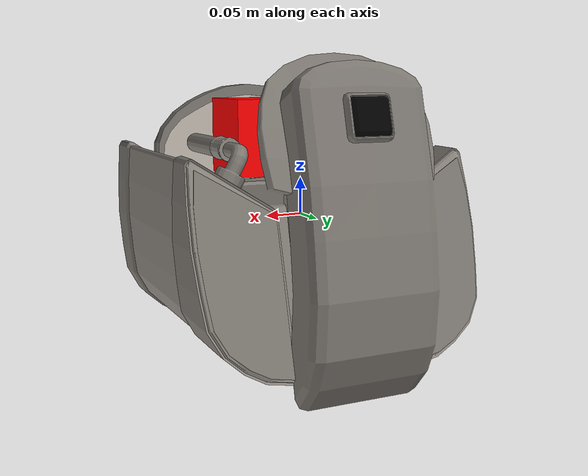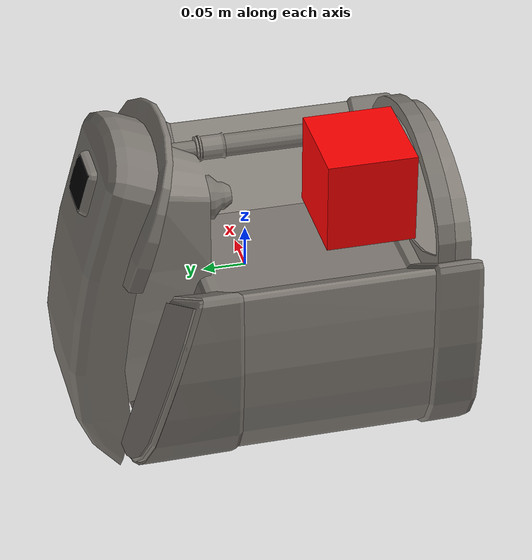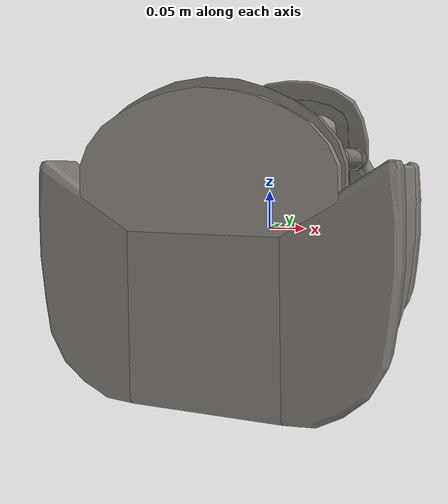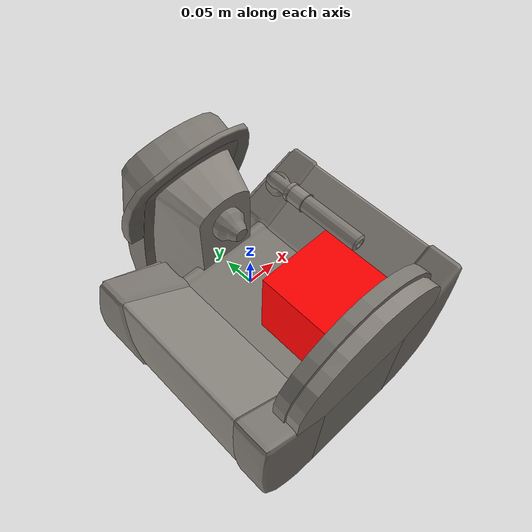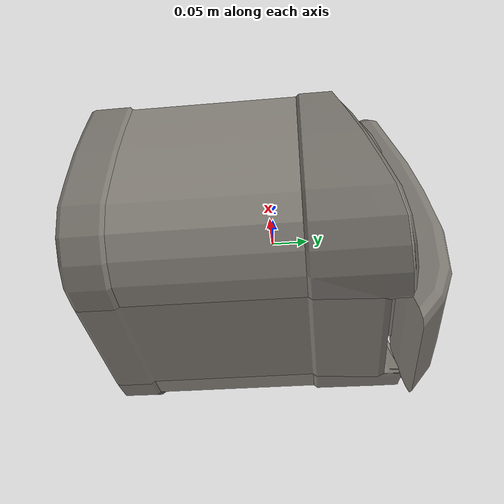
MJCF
<mujoco model="coffee_machine_14">
  <compiler autolimits="true" boundmass="0.01" angle="radian"/>
  <default>
    <default class="/">
      <default class="__VISUAL_MJT__">
        <geom contype="0" conaffinity="0" group="0"/>
      </default>
      <default class="__STRUCTURAL_MJT__">
        <geom contype="8" conaffinity="15" group="4" friction="0.90000000000000002 0.90000000000000002 0.001" solref="0.025000000000000001 1" solimp="0.998 0.998 0.001"/>
      </default>
      <default class="__DYNAMIC_MJT__">
        <geom contype="1" conaffinity="15" group="4" friction="0.90000000000000002 0.90000000000000002 0.001" solref="0.025000000000000001 1" solimp="0.998 0.998 0.001"/>
      </default>
    </default>
  </default>
  <asset>
    <material name="material_coffee_machine_backup_mat" class="/" specular="0.5" shininess="0.5" rgba="0.5 0.5 0.5 1"/>
    <material name="material_Coffee_Machine_Readout_Mat_Off" class="/" specular="0.5" shininess="0.5" rgba="0 0 0 1"/>
    <texture name="Coffee_Machine_Decal_Mat" type="2d" file="Coffee_Machine_Decal_AlbedoTransparency.png"/>
    <material name="material_Coffee_Machine_Decal_Mat" class="/" texture="Coffee_Machine_Decal_Mat" specular="0.5" shininess="0.5" rgba="1 1 1 1"/>
    <texture name="Coffee_Machine_Metal_Mat" type="2d" file="MetalBumpy_AlbedoTransparency.png"/>
    <material name="material_Coffee_Machine_Metal_Mat" class="/" texture="Coffee_Machine_Metal_Mat" specular="0.5" shininess="0.5" rgba="0.66176469999999998 0.66176469999999998 0.66176469999999998 1"/>
    <texture name="Coffee_Machine_Secondary4_Color_Mat" type="2d" file="BrushedIron_AlbedoTransparency.png"/>
    <material name="material_Coffee_Machine_Secondary4_Color_Mat" class="/" texture="Coffee_Machine_Secondary4_Color_Mat" specular="0.5" shininess="0.5" rgba="0.72058820000000001 0.72058820000000001 0.72058820000000001 1"/>
    <texture name="Coffee_Machine_Primary4_Color_Mat" type="2d" file="BumpyPlastic_Albedo.png"/>
    <material name="material_Coffee_Machine_Primary4_Color_Mat" class="/" texture="Coffee_Machine_Primary4_Color_Mat" specular="0.5" shininess="0.5" rgba="0.64705880000000005 0.64705880000000005 0.64705880000000005 1"/>
    <mesh name="coffee_machine_14_coffee_machine_14_0" class="/" file="coffee_machine_14_coffee_machine_14/coffee_machine_14_coffee_machine_14_0.obj" scale="1 1 1"/>
    <mesh name="coffee_machine_14_coffee_machine_14_1" class="/" file="coffee_machine_14_coffee_machine_14/coffee_machine_14_coffee_machine_14_1.obj" scale="1 1 1"/>
    <mesh name="coffee_machine_14_coffee_machine_14_2" class="/" file="coffee_machine_14_coffee_machine_14/coffee_machine_14_coffee_machine_14_2.obj" scale="1 1 1"/>
    <mesh name="coffee_machine_14_coffee_machine_14_3" class="/" file="coffee_machine_14_coffee_machine_14/coffee_machine_14_coffee_machine_14_3.obj" scale="1 1 1"/>
    <mesh name="coffee_machine_14_coffee_machine_14_4" class="/" file="coffee_machine_14_coffee_machine_14/coffee_machine_14_coffee_machine_14_4.obj" scale="1 1 1"/>
    <mesh name="coffee_machine_14_coffee_machine_14_5" class="/" file="coffee_machine_14_coffee_machine_14/coffee_machine_14_coffee_machine_14_5.obj" scale="1 1 1"/>
  </asset>
  <worldbody>
    <body name="coffee_machine_14">
      <joint name="coffee_machine_14_free" class="/" type="free" pos="0 0 0" axis="0 0 1" stiffness="0" range="0 0" armature="0" damping="0.10000000000000001" frictionloss="0"/>
      <body name="coffee_machine_14_coffee_machine_14" pos="0.00031 -0.22933999999999999 -0.04301" quat="1 0 0 0">
        <geom name="coffee_machine_14_coffee_machine_14_0" class="__VISUAL_MJT__" type="mesh" material="material_coffee_machine_backup_mat" shellinertia="true" mesh="coffee_machine_14_coffee_machine_14_0"/>
        <geom name="coffee_machine_14_coffee_machine_14_1" class="__VISUAL_MJT__" type="mesh" material="material_Coffee_Machine_Readout_Mat_Off" shellinertia="false" mesh="coffee_machine_14_coffee_machine_14_1"/>
        <geom name="coffee_machine_14_coffee_machine_14_2" class="__VISUAL_MJT__" type="mesh" material="material_Coffee_Machine_Decal_Mat" shellinertia="true" mesh="coffee_machine_14_coffee_machine_14_2"/>
        <geom name="coffee_machine_14_coffee_machine_14_3" class="__VISUAL_MJT__" type="mesh" material="material_Coffee_Machine_Metal_Mat" shellinertia="false" mesh="coffee_machine_14_coffee_machine_14_3"/>
        <geom name="coffee_machine_14_coffee_machine_14_4" class="__VISUAL_MJT__" type="mesh" material="material_Coffee_Machine_Secondary4_Color_Mat" shellinertia="false" mesh="coffee_machine_14_coffee_machine_14_4"/>
        <geom name="coffee_machine_14_coffee_machine_14_5" class="__VISUAL_MJT__" type="mesh" material="material_Coffee_Machine_Primary4_Color_Mat" shellinertia="false" mesh="coffee_machine_14_coffee_machine_14_5"/>
        <site name="coffee_machine_14_Receptacle_0" class="/" type="box" rgba="1 0 0 1" size="0.057185903191566467 0.05279916524887085 0.055147178471088409" pos="-0 0.093699164688587189 0.14079999923706055" quat="1 0 0 0"/>
        <geom name="coffee_machine_14_PrimitiveCollider_0" class="__DYNAMIC_MJT__" type="box" size="0.19422313570976257 0.22922277450561523 0.11500576138496399" rgba="0 1 0 1" pos="-0 0.22922277450561523 -0.048953324556350708" quat="1 0 0 0"/>
        <geom name="coffee_machine_14_PrimitiveCollider_1" class="__DYNAMIC_MJT__" type="box" size="0.056859135627746582 0.17478229105472565 0.035245645791292191" rgba="0 1 0 1" pos="-0.15010969340801239 0.17478229105472565 0.071521684527397156" quat="0.96038365364074707 0 -0.27868124842643738 0"/>
        <geom name="coffee_machine_14_PrimitiveCollider_2" class="__DYNAMIC_MJT__" type="box" size="0.056859135627746582 0.17478229105472565 0.035245645791292191" rgba="0 1 0 1" pos="0.15082283318042755 0.17478229105472565 0.066731348633766174" quat="0.96887761354446411 0 0.24754029512405396 0"/>
        <geom name="coffee_machine_14_PrimitiveCollider_3" class="__DYNAMIC_MJT__" type="box" size="0.13936808705329895 0.020678043365478516 0.11748838424682617" rgba="0 1 0 1" pos="-0 0.020678043365478516 0.099179744720458984" quat="1 0 0 0"/>
        <geom name="coffee_machine_14_PrimitiveCollider_4" class="__DYNAMIC_MJT__" type="box" size="0.11654035747051239 0.083311952650547028 0.11748838424682617" rgba="0 1 0 1" pos="-0 0.3449501097202301 0.11340463161468506" quat="0.98925596475601196 0.14619436860084534 0 0"/>
      </body>
    </body>
  </worldbody>
</mujoco>
